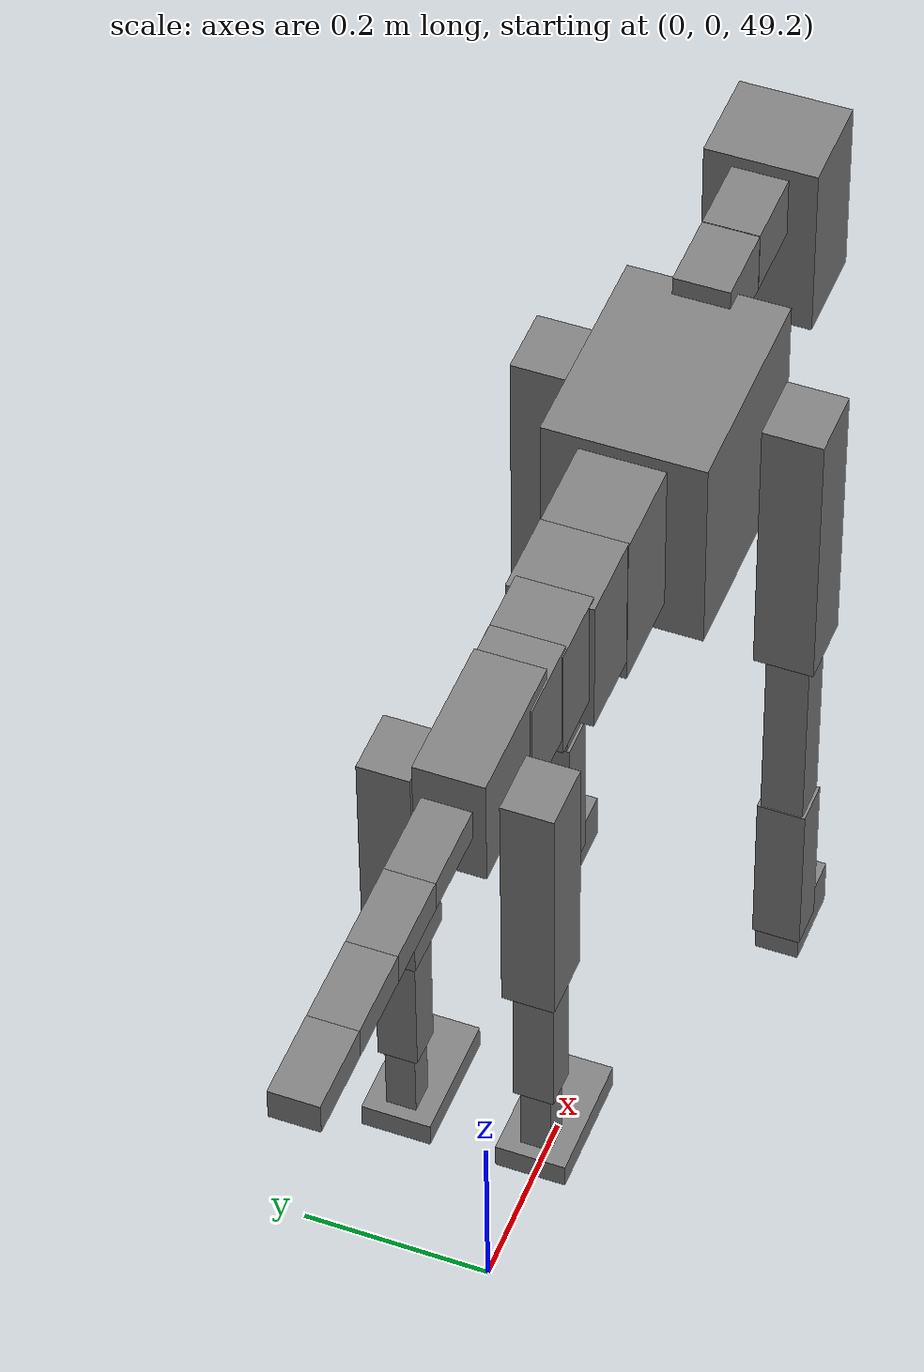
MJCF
<mujoco model="dog">

    <default>
        <joint armature="0.02" stiffness="1" damping="0.2" limited="true"/>
        <geom condim="3" friction="1 0.05 0.05" margin="0.01"/>
        <motor ctrllimited="true" ctrlrange="-1.0 1.0" forcelimited="true" gear="50"/>
    </default>

    <compiler inertiafromgeom="true" angle="radian"/>

    <option timestep="0.016" iterations="50" tolerance="1e-10" solver="Newton" jacobian="dense" cone="pyramidal"/>

    <size nconmax="20000" njmax="60000" nstack="5000000"/>
    <visual>
        <map force="0.1" zfar="30"/>
        <rgba haze="0.15 0.25 0.35 1"/>
        <quality shadowsize="2048"/>
        <global offwidth="800" offheight="800"/>
    </visual>

    <asset>
        <texture type="skybox" builtin="gradient" rgb1="0.3 0.5 0.7" rgb2="0 0 0" width="512" height="512"/>
        <texture name="texplane" type="2d" builtin="checker" rgb1=".2 .3 .4" rgb2=".1 0.15 0.2" width="512" height="512"
                 mark="cross" markrgb=".8 .8 .8"/>
        <texture name="texgeom" type="cube" builtin="flat" mark="cross" width="127" height="1278" rgb1="0.8 0.6 0.4"
                 rgb2="0.8 0.6 0.4" markrgb="1 1 1" random="0.01"/>

        <material name="matplane" reflectance="0.3" texture="texplane" texrepeat="1 1" texuniform="true"/>
        <material name="matgeom" texture="texgeom" texuniform="true" rgba="0.8 0.6 .4 1"/>
    </asset>

    <worldbody>
        <geom name="floor" pos="0 0 0" size="0 0 .25" type="plane" material="matplane" condim="3"/>

        <light directional="false" diffuse=".2 .2 .2" specular="0 0 0" pos="0 0 5" dir="0 0 -1" castshadow="false"/>
        <light mode="targetbodycom" target="torso" directional="false" diffuse=".8 .8 .8" specular="0.3 0.3 0.3"
               pos="0 0 4.0" dir="0 0 -1"/>

        <body name="root" pos="0 0 50">
            <freejoint name="root_1"/>
            <geom type="box" pos="0 0 -0.02" size="0.0774  0.0358  0.063" density="2030"/>

            <body name="spine1" pos="0.054 0 0">
                <joint name="spine1_y" axis="0 1 0" range="0 0.7" limited="true"/>
                <geom type="box" pos="0.02375 0 -0.03" size="0.04375  0.0375  0.05985" density="2030"/>

                <body name="spine2" pos="0.0612 0 0">
                    <joint name="spine2_y" axis="0 1 0" range="-0.15 0.15" limited="true"/>
                    <geom type="box" pos="0.03555  0  -0.04" size="0.04055  0.039  0.06615" density="2030"/>

                    <body name="spine3" pos="0.0730 0 0">
                        <joint name="spine3_y" axis="0 1 0" range="-0.15 0.15" limited="true"/>
                        <geom type="box" pos="0.03555  0  -0.057" size="0.04555  0.0445  0.081" density="2030"/>

                        <body name="spine4" pos="0.0780 0 0">
                            <joint name="spine4_y" axis="0 1 0" range="-0.15 0.15" limited="true"/>
                            <geom type="box" pos="0.05265  0  -0.07" size="0.05265  0.045  0.09135" density="2030"/>

                            <body name="torso" pos="0.1082 0 0">
                                <joint name="torso_y" axis="0 1 0" range="-0.15 0.15" limited="true"/>
                                <geom type="box" pos="0.11925  0  -0.085" size="0.11925  0.085  0.11745"
                                      density="2030"/>

                                <body name="neck1" pos="0.2160  0   0.0180">
                                    <joint name="neck1_y" axis="0 1 0" range="-1.2  -1" limited="true"/>
                                    <geom type="box" pos="0.0423  0  0" size="0.0423  0.03  0.036" density="2325"/>

                                    <body name="neck2" pos="0.0853  0  0">
                                        <joint name="neck2_y" axis="0 1 0" range="0.1  0" limited="true"/>
                                        <geom type="box" pos="0.0423  0  0" size="0.0423  0.03  0.036" density="2325"/>

                                        <body name="head" pos="0.0853  0  0">
                                            <joint name="head_y" axis="0 1 0" range="-0.3  -0.2" limited="true"/>
                                            <geom type="box" pos="0.0531  0  -0.055" size="0.0531  0.06  0.1044"
                                                  density="4030"/>

                                        </body>
                                    </body>
                                </body>

                                <body name="front_shoulder" pos="0.156  0   -0.0480">
                                    <joint name="front_shoulder_y" axis="0 1 0" range="-1 1.5" limited="true"/>
                                    <geom type="box" pos="0 0.13 -0.1359" size="0.0373  0.0319  0.1625" density="1158"/>
                                    <geom type="box" pos="0 -0.13 -0.1359" size="0.0373  0.0319  0.1625"
                                          density="1158"/>

                                    <body name="front_elbow" pos="0  0  -0.2718">
                                        <joint name="front_elbow_y" axis="0 1 0" range="-2 0" limited="true"/>
                                        <geom type="box" pos="0 0.13 -0.1377" size="0.0224  0.0229  0.1377"
                                              density="1081"/>
                                        <geom type="box" pos="0 -0.13 -0.1377" size="0.0224  0.0229  0.1377"
                                              density="1081"/>

                                        <body name="front_wrist" pos="0  0  -0.2753">
                                            <joint name="front_wrist_y" axis="0 1 0" range="-0.2 0" limited="true"/>
                                            <geom type="box" pos="0 0.13 -0.0869" size="0.0236  0.0262  0.1000"
                                                  density="1664"/>
                                            <geom type="box" pos="0 -0.13 -0.0869" size="0.0236  0.0262  0.1000"
                                                  density="1664"/>

                                            <body name="front_finger_end" pos="0  0  -0.1738">
                                                <joint name="front_finger_y" axis="0 1 0" range="-0.4 1"
                                                       limited="true"/>
                                                <geom type="box" pos="0.0239  0.13  -0.0141"
                                                      size="0.0438  0.0239  0.0291" density="1515"/>
                                                <geom type="box" pos="0.0239  -0.13  -0.0141"
                                                      size="0.0438  0.0239  0.0291" density="1515"/>

                                            </body>

                                        </body>
                                    </body>
                                </body>

                            </body>
                        </body>
                    </body>
                </body>
            </body>

            <body name="back_hip" pos="-0.03 0 -0.018">
                <joint name="back_hip_y" axis="0 1 0" range="-1.5 0.3" limited="true"/>
                <geom type="box" pos="0 0.07 -0.1128" size="0.0337  0.0265  0.1356" density="1154"/>
                <geom type="box" pos="0 -0.07 -0.1128" size="0.0337  0.0265  0.1356" density="1154"/>

                <body name="back_knee" pos="0  0  -0.2255">
                    <joint name="back_knee_y" axis="0 1 0" range="0 2.8" limited="true"/>
                    <geom type="box" pos="0 0.07 -0.0821" size="0.0207  0.0204  0.0977" density="1227"/>
                    <geom type="box" pos="0 -0.07 -0.0821" size="0.0207  0.0204  0.0977" density="1227"/>

                    <body name="back_ankle" pos="0  0  -0.1642">
                        <joint name="back_ankle_y" axis="0 1 0" range="-2.2 0" limited="true"/>
                        <geom type="box" pos="0 0.07 -0.0557" size="0.0155  0.0155  0.0669" density="1284"/>
                        <geom type="box" pos="0 -0.07 -0.0557" size="0.0155  0.0155  0.0669" density="1284"/>

                        <body name="back_toe_end" pos="0  0  -0.1113">
                            <joint name="back_toe_y" axis="0 1 0" range="-0.4 1" limited="true"/>
                            <geom type="box" pos="0.0360  0.07  0.0014" size="0.0660  0.0360  0.0136" density="1515"/>
                            <geom type="box" pos="0.0360  -0.07  0.0014" size="0.0660  0.0360  0.0136" density="1515"/>

                        </body>
                    </body>
                </body>
            </body>

            <body name="tail1" pos="-0.074 0 -0.006">
                <joint name="tail1_y" axis="0 1 0" range="-0.2 0.2" limited="true"/>
                <geom type="box" pos="-0.0536  0  0" size="0.045  0.025  0.0175" density="1587"/>

                <body name="tail2" pos="-0.09 0 0">
                    <joint name="tail2_y" axis="0 1 0" range="-0.2 0.2" limited="true"/>
                    <geom type="box" pos="-0.0536  0  0" size="0.045  0.025  0.0175" density="1587"/>

                    <body name="tail3" pos="-0.09 0 0">
                        <joint name="tail3_y" axis="0 1 0" range="-0.2 0.2" limited="true"/>
                        <geom type="box" pos="-0.0536  0  0" size="0.045  0.025  0.0175" density="1587"/>

                        <body name="tail4" pos="-0.09 0 0">
                            <joint name="tail4_y" axis="0 1 0" range="-0.2 0.2" limited="true"/>
                            <geom type="box" pos="-0.0536  0  0" size="0.045  0.025  0.0175" density="1587"/>

                        </body>
                    </body>
                </body>
            </body>
        </body>
    </worldbody>

    <actuator>
        <motor joint="spine1_y" forcerange="-150 150     "/>
        <motor joint="spine2_y" forcerange="-150 150     "/>
        <motor joint="spine3_y" forcerange="-150 150     "/>
        <motor joint="spine4_y" forcerange="-150 150     "/>
        <motor joint="torso_y" forcerange="-150 150     "/>
        <motor joint="neck1_y" forcerange="-100 100       "/>
        <motor joint="neck2_y" forcerange="-100 100       "/>
        <motor joint="head_y" forcerange="-150 150       "/>
        <motor joint="front_shoulder_y" forcerange="-187.62 125.09"/>
        <motor joint="front_elbow_y" forcerange="-123.18 143.73"/>
        <motor joint="front_wrist_y" forcerange="-77.04 132.51"/>
        <motor joint="front_finger_y" forcerange="-65.75 21.64"/>
        <motor joint="back_hip_y" forcerange="-254.18 298.69"/>
        <motor joint="back_knee_y" forcerange="-243.19 253.83"/>
        <motor joint="back_angle_y" forcerange="-70.05 78.09"/>
        <motor joint="back_toe_y" forcerange="-120.42 87.50"/>
        <motor joint="tail1_y" forcerange="-50 50     "/>
        <motor joint="tail2_y" forcerange="-50 50     "/>
        <motor joint="tail3_y" forcerange="-50 50     "/>
        <motor joint="tail4_y" forcerange="-50 50     "/>
    </actuator>
</mujoco>
